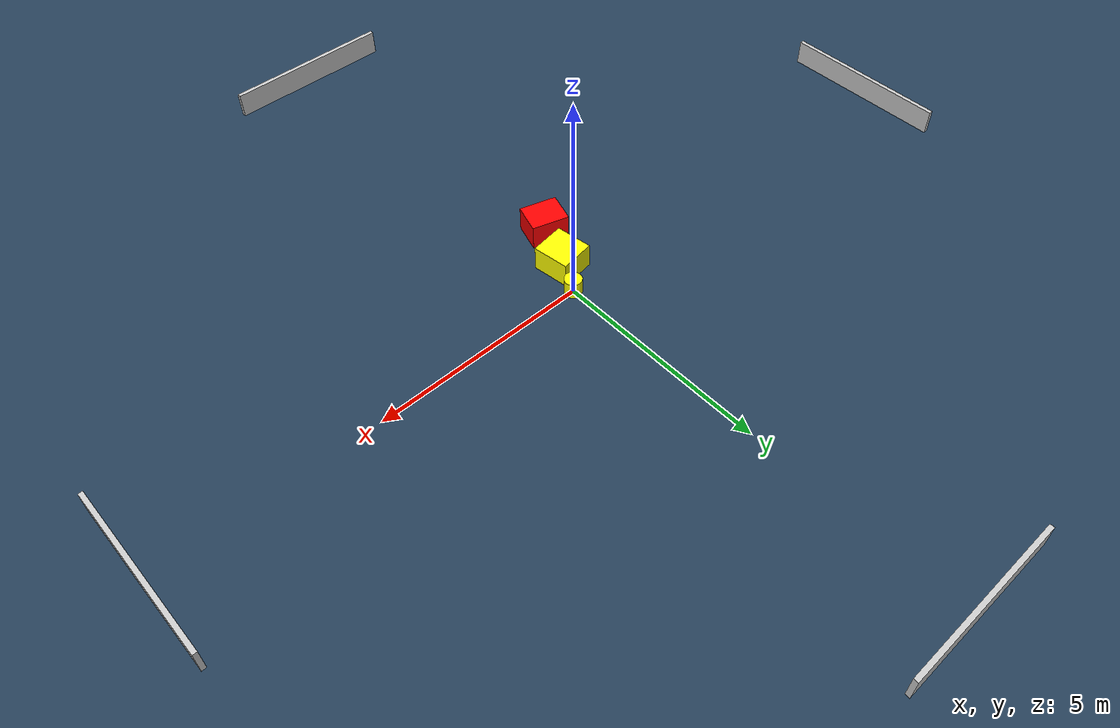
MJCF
<?xml version="1.0" ?>
<mujoco model="generated_environment">
  <option timestep="0.01" integrator="RK4" cone="elliptic"/>
  <default>
    <geom density="1"/>
  </default>
  <asset>
    <texture builtin="gradient" height="3072" name="skybox" rgb1="0.3 0.5 0.7" rgb2="0 0 0" type="skybox" width="512"/>
    <texture builtin="checker" height="300" name="groundplane" rgb1="0.2 0.3 0.4" rgb2="0.1 0.2 0.3" type="2d" width="300"/>
    <material name="groundplane" reflectance="0.2" texrepeat="5 5" texture="groundplane"/>
  </asset>
  <worldbody>
    <light dir="0 0 -1" directional="true" pos="0 0 1.5"/>
    <geom condim="3" friction="0.5 0.005 0.001" material="groundplane" name="floor" pos="0 0 0" size="0 0 0.05" type="plane"/>
    <body name="walls">
      <geom name="wall_1" condim="4" pos="-10.0 0.0 0.3" rgba="0.800000011920929 0.800000011920929 0.800000011920929 1.0" size="0.05 2.0 0.3" type="box"/>
      <geom name="wall_2" condim="4" pos="10.0 0.0 0.3" rgba="0.800000011920929 0.800000011920929 0.800000011920929 1.0" size="0.05 2.0 0.3" type="box"/>
      <geom name="wall_3" condim="4" pos="0.0 -10.0 0.3" rgba="0.800000011920929 0.800000011920929 0.800000011920929 1.0" size="2.0 0.05 0.3" type="box"/>
      <geom name="wall_4" condim="4" pos="0.0 10.0 0.3" rgba="0.800000011920929 0.800000011920929 0.800000011920929 1.0" size="2.0 0.05 0.3" type="box"/>
    </body>
    <body name="robot">
      <joint name="joint_x" type="slide" pos="0 0 0" axis="1 0 0"/>
      <joint name="joint_y" type="slide" pos="0 0 0" axis="0 1 0"/>
      <geom name="robot" type="cylinder" pos="0.0 0.0 0.2" size="0.2 0.2 0.0" mass="5.0" friction="1.0 0.005 0.0001" condim="4" rgba="1.0 1.0 0.0 1.0"/>
    </body>
    <body name="obstacle_1_movable">
      <geom name="obstacle_1_movable" condim="4" pos="-0.33112955011149936 -0.702570000091802 0.3" euler="0 0 8.090158532728866" friction="0.0 0.005 0.001" rgba="1.0 1.0 0.0 1.0" size="0.4023150537308312 0.42721591859436003 0.3" type="box" mass="0.1"/>
      <joint type="free"/>
    </body>
    <body name="obstacle_2_static">
      <geom name="obstacle_2_static" condim="4" pos="-0.75263435293073 -1.7555879167146968 0.3" euler="0 0 253.1238227049456" friction="0.0 0.005 0.001" rgba="1.0 0.0 0.0 1.0" size="0.35173133775598303 0.43236359767172416 0.3" type="box"/>
    </body>
  </worldbody>
  <actuator>
    <motor name="actuator_x" joint="joint_x" gear="1" ctrlrange="-1 1"/>
    <motor name="actuator_y" joint="joint_y" gear="1" ctrlrange="-1 1"/>
  </actuator>
</mujoco>
